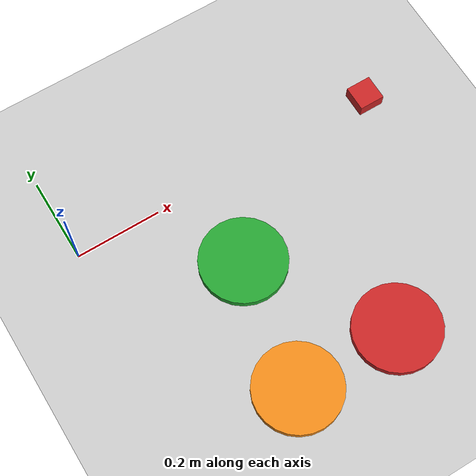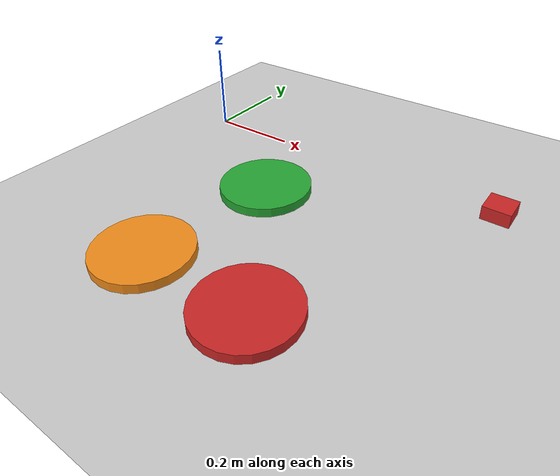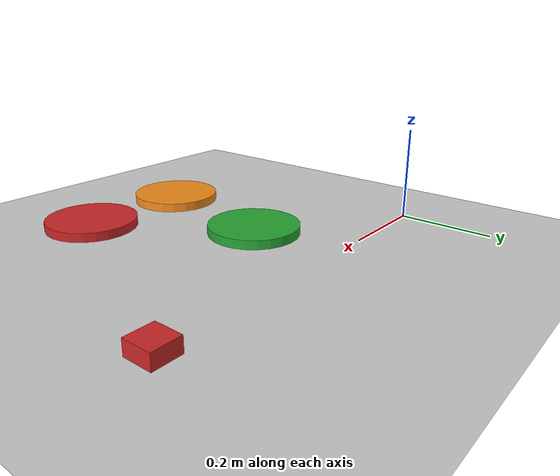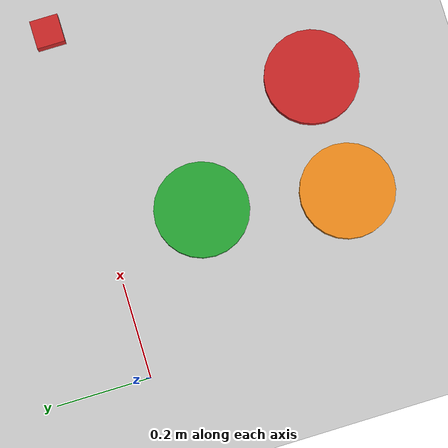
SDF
<?xml version="1.0" ?>
<sdf version="1.5">
  <world name="default">
    <!-- Ground Plane -->
    <include>
      <uri>model://ground_plane</uri>
    </include>

    <!-- Light Source -->
    <include>
      <uri>model://sun</uri>
    </include>

    <!-- Obstacle Box -->

    <!-- Object Box -->
    <include>
      <uri>model://object_box</uri>
    </include>

    <!-- Bin -->
    <include>
      <uri>model://bin</uri>
    </include>

    <!-- Bin 2 -->
    <include>
      <uri>model://bin2</uri>
    </include>

    <!-- Bin 3 -->
    <include>
      <uri>model://bin3</uri>
    </include>

  </world>
</sdf>

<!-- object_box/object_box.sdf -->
<sdf version="1.5">
  <model name="object_box">
    <static>false</static>
    <link name="link">
      <inertial>
        <pose>0.75 0 0 0 0 0</pose>
        <mass>0.1</mass>
      </inertial>
      <collision name="collision">
        <pose>0.75 0 0 0 0 0</pose>
        <geometry>
          <box>
            <size>0.06 0.06 0.06</size>
          </box>
        </geometry>
        <surface>
          <friction>
            <ode>
              <mu>100</mu>
              <mu2>50</mu2>
            </ode>
          </friction>
        </surface>
      </collision>
      <visual name="visual">
        <pose>0.75 0 0 0 0 0</pose>
        <geometry>
          <box>
            <size>0.06 0.06 0.06</size>
          </box>
        </geometry>
        <material>
          <script>
            <uri>file://media/materials/scripts/gazebo.material</uri>
            <name>Gazebo/Red</name>
          </script>
        </material>
      </visual>
    </link>
  </model>
</sdf>

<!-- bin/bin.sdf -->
<sdf version="1.5">
  <model name="bin">
    <static>true</static>
    <link name="link">
      <inertial>
        <pose>0.5 -0.5 0.01 0 0 0</pose>
        <mass>0.1</mass>
      </inertial>
      <collision name="collision">
        <pose>0.5 -0.5 0.01 0 0 0</pose>
        <geometry>
          <cylinder>
            <radius>0.1</radius>
            <length>0.02</length>
          </cylinder>
        </geometry>
        <surface>
          <friction>
            <ode>
              <mu>100</mu>
              <mu2>50</mu2>
            </ode>
          </friction>
        </surface>
      </collision>
      <visual name="visual">
        <pose>0.5 -0.5 0.01 0 0 0</pose>
        <geometry>
          <cylinder>
            <radius>0.1</radius>
            <length>0.02</length>
          </cylinder>
        </geometry>
        <material>
          <script>
            <uri>file://media/materials/scripts/gazebo.material</uri>
            <name>Gazebo/Red</name>
          </script>
        </material>
      </visual>
    </link>
  </model>
</sdf>

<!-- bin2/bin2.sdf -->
<sdf version="1.5">
  <model name="bin2">
    <static>true</static>
    <link name="link">
      <inertial>
        <pose>0.3 -0.2 0.01 0 0 0</pose>
        <mass>0.1</mass>
      </inertial>
      <collision name="collision">
        <pose>0.3 -0.2 0.01 0 0 0</pose>
        <geometry>
          <cylinder>
            <radius>0.1</radius>
            <length>0.02</length>
          </cylinder>
        </geometry>
        <surface>
          <friction>
            <ode>
              <mu>100</mu>
              <mu2>50</mu2>
            </ode>
          </friction>
        </surface>
      </collision>
      <visual name="visual">
        <pose>0.3 -0.2 0.01 0 0 0</pose>
        <geometry>
          <cylinder>
            <radius>0.1</radius>
            <length>0.02</length>
          </cylinder>
        </geometry>
        <material>
          <script>
            <uri>file://media/materials/scripts/gazebo.material</uri>
            <name>Gazebo/Green</name>
          </script>
        </material>
      </visual>
    </link>
  </model>
</sdf>

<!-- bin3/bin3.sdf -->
<sdf version="1.5">
  <model name="bin3">
    <static>true</static>
    <link name="link">
      <inertial>
        <pose>0.25 -0.5 0.01 0 0 0</pose>
        <mass>0.1</mass>
      </inertial>
      <collision name="collision">
        <pose>0.25 -0.5 0.01 0 0 0</pose>
        <geometry>
          <cylinder>
            <radius>0.1</radius>
            <length>0.02</length>
          </cylinder>
        </geometry>
        <surface>
          <friction>
            <ode>
              <mu>100</mu>
              <mu2>50</mu2>
            </ode>
          </friction>
        </surface>
      </collision>
      <visual name="visual">
        <pose>0.25 -0.5 0.01 0 0 0</pose>
        <geometry>
          <cylinder>
            <radius>0.1</radius>
            <length>0.02</length>
          </cylinder>
        </geometry>
        <material>
          <script>
            <uri>file://media/materials/scripts/gazebo.material</uri>
            <name>Gazebo/Orange</name>
          </script>
        </material>
      </visual>
    </link>
  </model>
</sdf>
